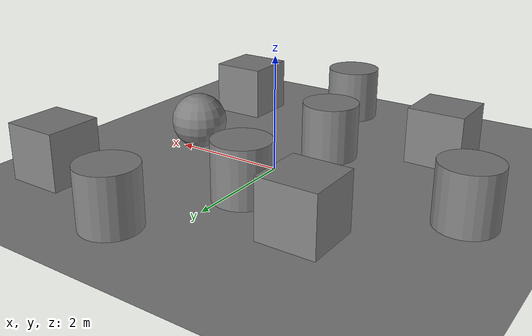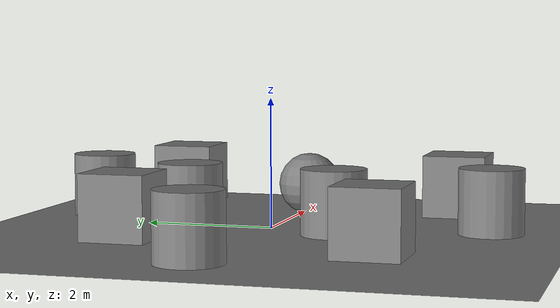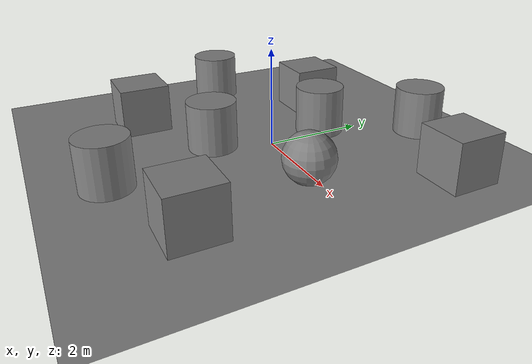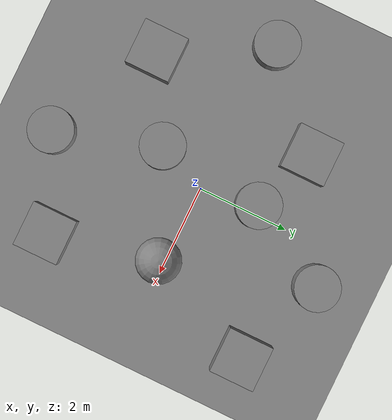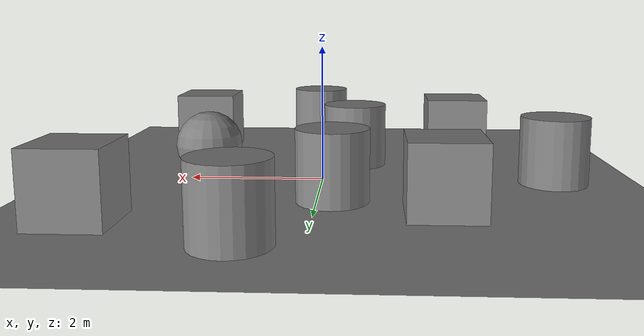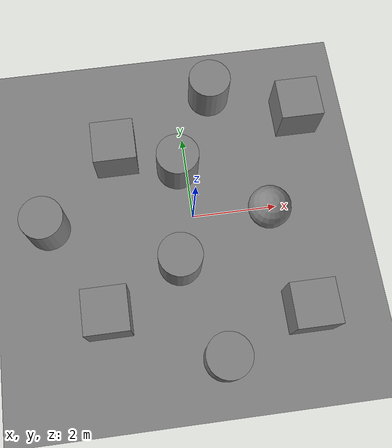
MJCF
<?xml version="1.0" encoding="UTF-8"?>
<mujoco model="empty">
  <compiler angle="radian" />
  <option timestep="0.002" gravity="0 0 -9.81" />
  <worldbody>
    <light name="sun" directional="true" pos="0 0 10" dir="-0.5 0.1 -0.9"
      diffuse="0.4 0.4 0.4" specular="0.1 0.1 0.1" />
    <body name="ground_plane" pos="0 0 0">
      <inertial mass="1" pos="0 0 0" diaginertia="1 1 1" />
      <geom type="plane" size="100 100 0.1" friction="0.01 0.01 0.01" />
    </body>
    <body name="box" pos="2.8417219933466216 2.3179857352986479 0.49999999990199806">
      <inertial mass="1" pos="0 0 0" diaginertia="0.16666 0.16666 0.16666" />
      <geom type="box" size="0.5 0.5 0.5" friction="1.0 0.8 0.01" />
    </body>
    <body name="box_0" pos="-1.655056733151445 1.7780978645303196 0.49999999990199806">
      <inertial mass="1" pos="0 0 0" diaginertia="0.16666 0.16666 0.16666" />
      <geom type="box" size="0.5 0.5 0.5" friction="1.0 0.8 0.01" />
    </body>
    <body name="box_1" pos="2.2530130565463509 -2.5291287914817251 0.49999999990199806">
      <inertial mass="1" pos="0 0 0" diaginertia="0.16666 0.16666 0.16666" />
      <geom type="box" size="0.5 0.5 0.5" friction="1.0 0.8 0.01" />
    </body>
    <body name="box_2" pos="-2.1994093670324379 -2.0956478539805325 0.49999999990199806">
      <inertial mass="1" pos="0 0 0" diaginertia="0.16666 0.16666 0.16666" />
      <geom type="box" size="0.5 0.5 0.5" friction="1.0 0.8 0.01" />
    </body>
    <body name="sphere" pos="1.7558753273133232 -0.14177392862852622 0.499999999902001">
      <inertial mass="1" pos="0 0 0" diaginertia="0.1 0.1 0.1" />
      <geom type="sphere" size="0.5" friction="1.0 0.8 0.01" />
    </body>
    <body name="cone" pos="-0.45892397368634047 -1.1120748308789254 0.49999999993296756">
      <inertial mass="1" pos="0 0 0" diaginertia="0.075 0.075 0.075" />
      <geom type="cylinder" size="0.5 0.5" friction="1.0 0.8 0.01" />
    </body>
    <body name="cone_0" pos="-0.21110311954607025 1.2444863752518083 0.49999999993296756">
      <inertial mass="1" pos="0 0 0" diaginertia="0.075 0.075 0.075" />
      <geom type="cylinder" size="0.5 0.5" friction="1.0 0.8 0.01" />
    </body>
    <body name="cylinder" pos="-3.4181480821354935 0.11779292196676421 0.49999942638036005">
      <inertial mass="1" pos="0 0 0" diaginertia="0.14580 0.14580 0.125" />
      <geom type="cylinder" size="0.5 0.5" friction="1.0 0.8 0.01" />
    </body>
    <body name="cylinder_0" pos="0.81116111290291459 3.0972589908019872 0.49999942638036005">
      <inertial mass="1" pos="0 0 0" diaginertia="0.14580 0.14580 0.125" />
      <geom type="cylinder" size="0.5 0.5" friction="1.0 0.8 0.01" />
    </body>
    <body name="cylinder_1" pos="0.25970265554276373 -3.3643063096518571 0.49999942638036005">
      <inertial mass="1" pos="0 0 0" diaginertia="0.14580 0.14580 0.125" />
      <geom type="cylinder" size="0.5 0.5" friction="1.0 0.8 0.01" />
    </body>
  </worldbody>
  <actuator />
</mujoco>
